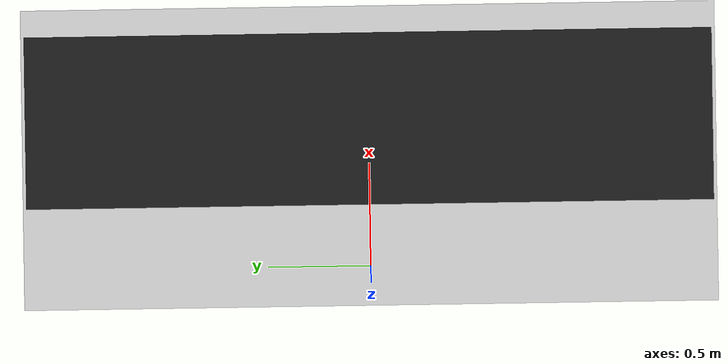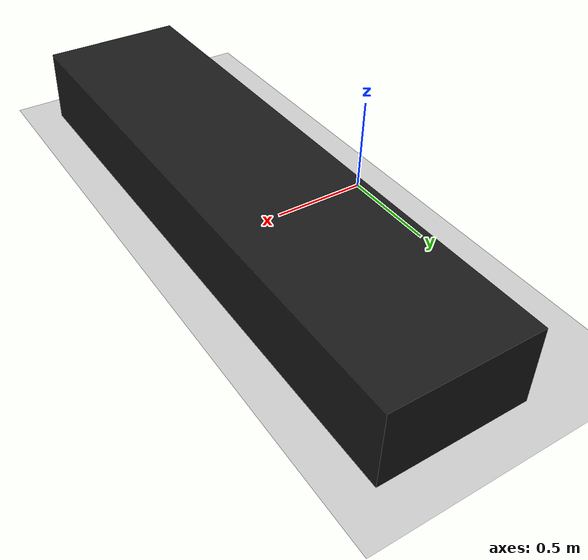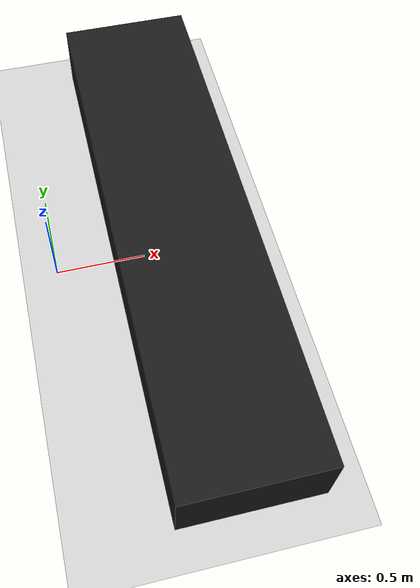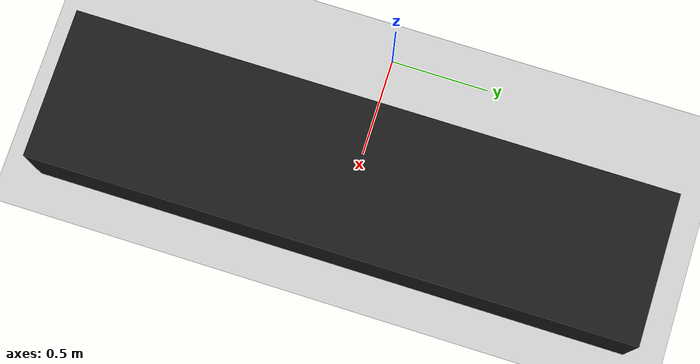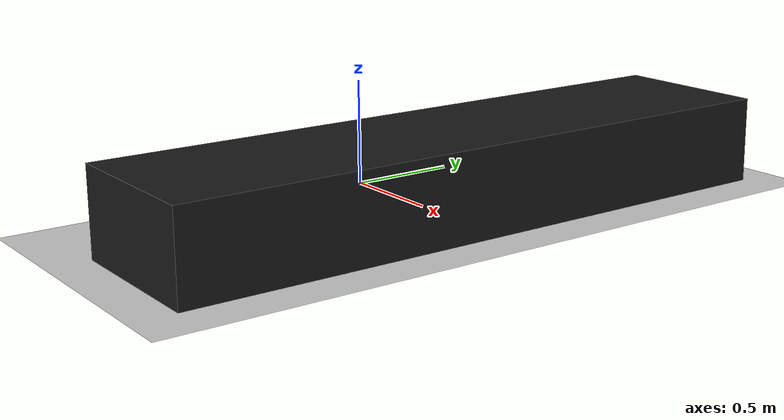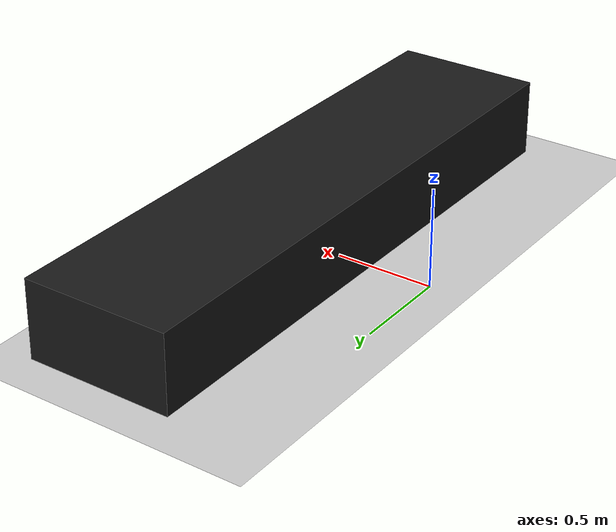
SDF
<?xml version="1.0"?>
<sdf version="1.9">
  <world name="ign_moveit2_conveyor_world">

    <!-- Physics -->
    <plugin filename="gz-sim-physics-system" name="gz::sim::systems::Physics">
    </plugin>

    <physics name="physics_config" type="dart"> <!-- check -->
      <max_step_size>0.005</max_step_size>
      <real_time_factor>1.0</real_time_factor>
      <dart>
        <collision_detector>bullet</collision_detector> <!-- was in physics not in plugin in example -->
      </dart>
    </physics>

    <!-- Scene -->
    <plugin filename="gz-sim-scene-broadcaster-system" name="gz::sim::systems::SceneBroadcaster">
    </plugin>
    <scene>
      <ambient>0.8 0.8 0.8</ambient>
      <grid>false</grid>
    </scene>

    <!-- User Commands (transform control) -->
    <plugin filename="gz-sim-user-commands-system" name="gz::sim::systems::UserCommands">
    </plugin>

    <!-- Illumination -->
    <light type="directional" name="sun">
      <cast_shadows>true</cast_shadows>
      <pose>0 0 10 0 0 0</pose>
      <diffuse>0.8 0.8 0.8 1</diffuse>
      <specular>0.2 0.2 0.2 1</specular>
      <attenuation>
        <range>1000</range>
        <constant>0.9</constant>
        <linear>0.01</linear>
        <quadratic>0.001</quadratic>
      </attenuation>
      <direction>-0.3 0.3 -0.9</direction>
    </light>

    <!-- Models -->
    <!-- Ground -->
    <model name="ground_plane">
      <pose>0 0 0 0 0 0</pose>
      <static>true</static>
      <link name="ground_plane_link">
        <collision name="ground_plane_collision">
          <geometry>
            <plane>
              <normal>0 0 1</normal>
            </plane>
          </geometry>
        </collision>
        <visual name="ground_plane_visual">
          <geometry>
            <plane>
              <normal>0 0 1</normal>
              <size>4 4</size>
            </plane>
          </geometry>
          <material>
            <diffuse>0.8 0.8 0.8 1</diffuse>
            <specular>0.8 0.8 0.8 1</specular>
          </material>
        </visual>
      </link>
    </model>

    <!-- Static target -->
    <model name="conveyor">
        <pose>0.7 0 0.2 0.0 0 0</pose>
        <static>true</static>
        <link name="link">
            <collision name="conveyor_collision">
                <geometry>
                    <box>
                        <size>0.75 3 0.4</size>
                    </box>
                </geometry>
                <surface>
                    <contact>
                        <collide_bitmask>0x0001</collide_bitmask>
                    </contact>
                </surface>
            </collision>
            <visual name="conveyor_visual">
                <cast_shadows>false</cast_shadows>
                <geometry>
                    <box>
                        <size>0.75 3 0.4</size>
                    </box>
                </geometry>
                <material>
                  <diffuse>0.1 0.1 0.1 1</diffuse>
                  <specular>0.4 0.4 0.4 1</specular>
                </material>
            </visual>

            <sensor name='table_contact_sensor' type='contact'>
              <contact>
                <collision>collision</collision>
              </contact>
            </sensor>

        </link>
    </model>

  </world>
</sdf>
